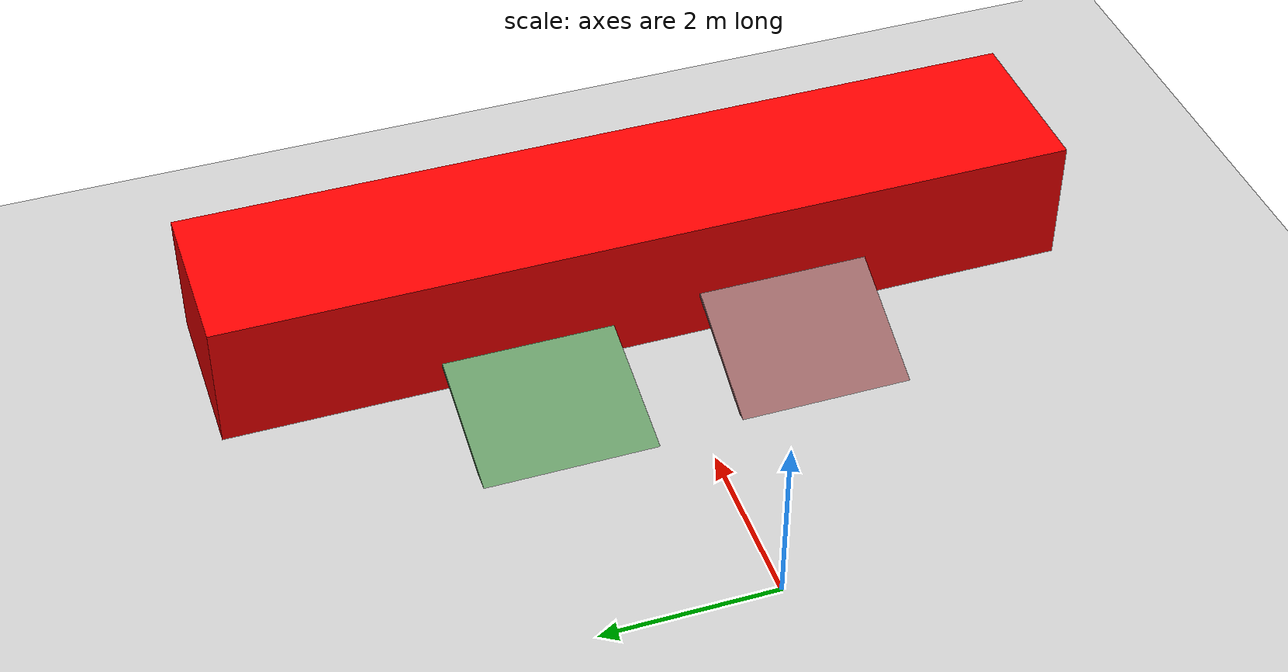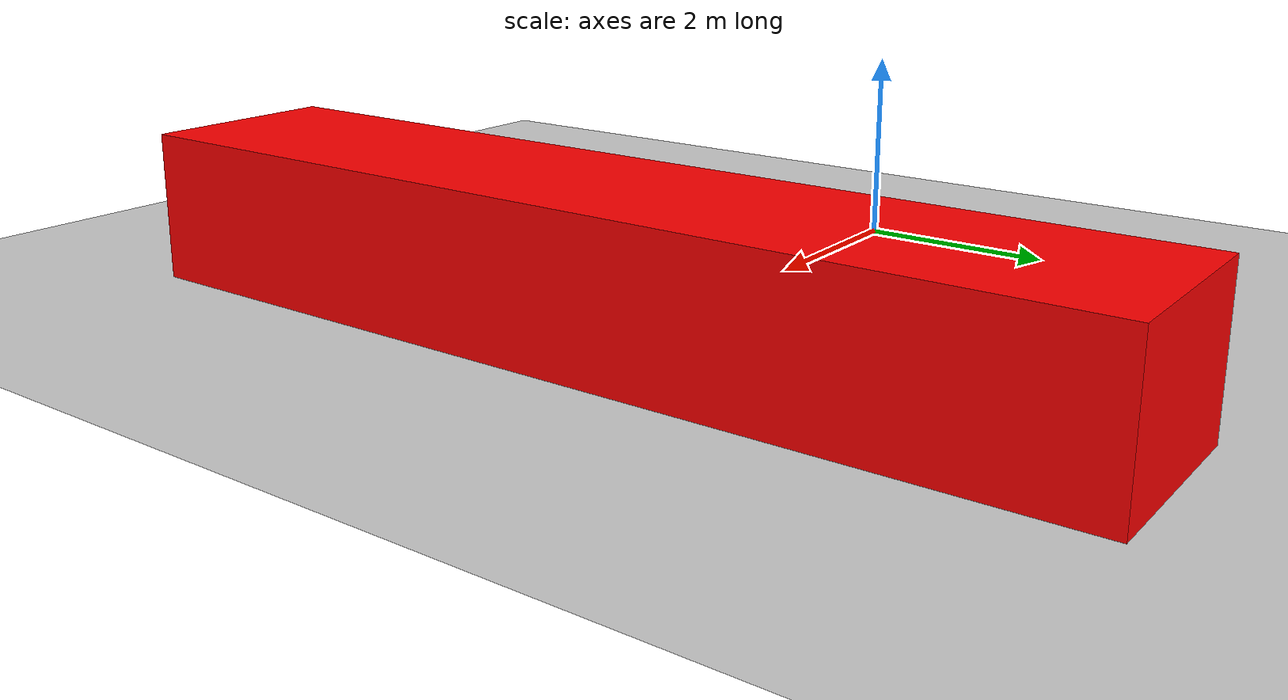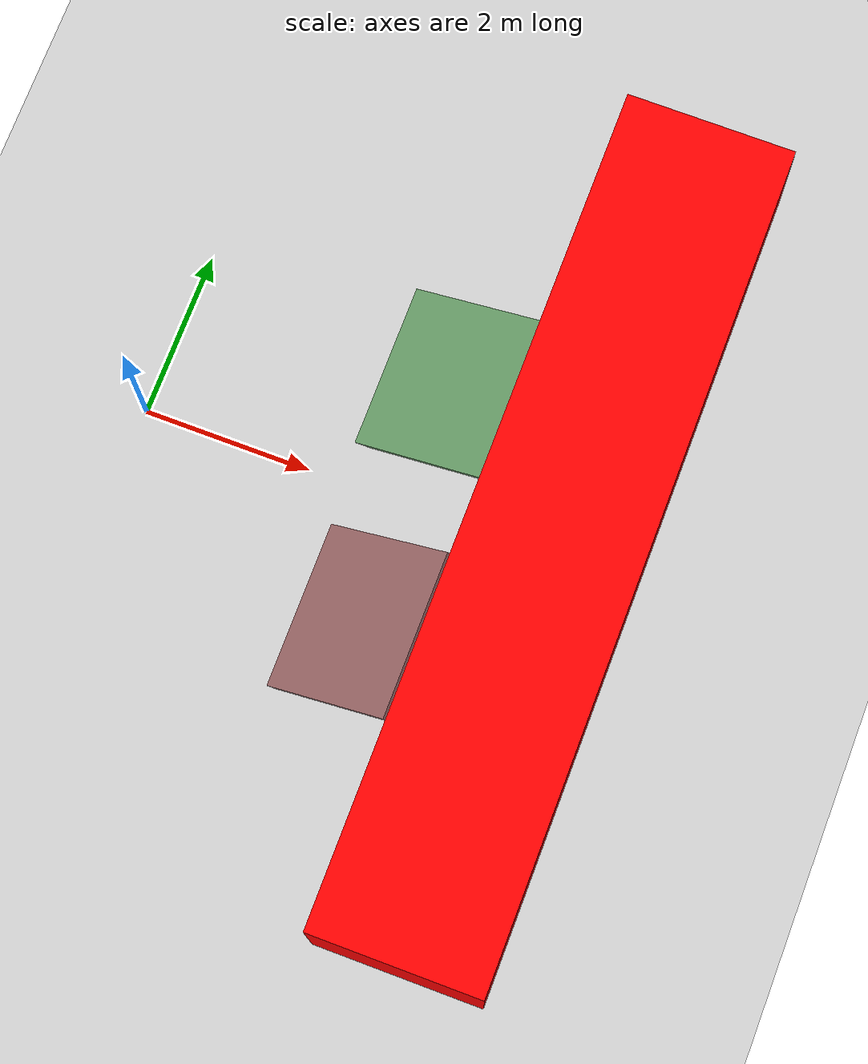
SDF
<?xml version="1.0" ?>
<sdf version="1.8">
  <world name="obstacle_world">
    <physics name="0.1ms" type="ignored">
      <max_step_size>0.0001</max_step_size> <!-- Ultra-high precision for stable slip -->
      <real_time_factor>1.0</real_time_factor>
    </physics>

    <plugin filename="gz-sim-physics-system" name="gz::sim::systems::Physics"/>
    <plugin filename="gz-sim-user-commands-system" name="gz::sim::systems::UserCommands"/>
    <plugin filename="gz-sim-scene-broadcaster-system" name="gz::sim::systems::SceneBroadcaster"/>
    <plugin filename="gz-sim-contact-system" name="gz::sim::systems::Contact"/>
    <plugin filename="gz-sim-imu-system" name="gz::sim::systems::Imu"/>

    <light type="directional" name="sun">
      <cast_shadows>true</cast_shadows>
      <pose>0 0 10 0 0 0</pose>
      <diffuse>0.8 0.8 0.8 1</diffuse>
      <specular>0.2 0.2 0.2 1</specular>
      <direction>-0.5 0.1 -0.9</direction>
    </light>

    <model name="ground_plane">
      <static>true</static>
      <link name="link">
        <collision name="collision">
          <geometry><plane><normal>0 0 1</normal><size>100 100</size></plane></geometry>
          <surface><friction><ode><mu>1.0</mu><mu2>1.0</mu2></ode></friction></surface>
        </collision>
        <visual name="visual">
          <geometry><plane><normal>0 0 1</normal><size>100 100</size></plane></geometry>
          <material><ambient>0.8 0.8 0.8 1</ambient><diffuse>0.8 0.8 0.8 1</diffuse></material>
        </visual>
      </link>
    </model>

    <!-- Obstacles and Ramps -->
    <model name="ramp_15"><pose>3.0 1.5 0.13 0 -0.26 0</pose><static>true</static><link name="l"><collision name="c"><geometry><box><size>2.0 2.0 0.05</size></box></geometry></collision><visual name="v"><geometry><box><size>2.0 2.0 0.05</size></box></geometry><material><diffuse>0.4 0.6 0.4 1</diffuse></material></visual></link></model>
    <model name="ramp_25"><pose>3.0 -1.5 0.21 0 -0.44 0</pose><static>true</static><link name="l"><collision name="c"><geometry><box><size>2.0 2.0 0.05</size></box></geometry></collision><visual name="v"><geometry><box><size>2.0 2.0 0.05</size></box></geometry><material><diffuse>0.6 0.4 0.4 1</diffuse></material></visual></link></model>

    <model name="big_wall">
      <pose>5.0 0 0.5 0 0 0</pose><static>true</static>
      <link name="link">
        <collision name="c"><geometry><box><size>2.0 10.0 2.0</size></box></geometry></collision>
        <visual name="v"><geometry><box><size>2.0 10.0 2.0</size></box></geometry><material><diffuse>1 0 0 1</diffuse></material></visual>
      </link>
    </model>

  </world>
</sdf>
